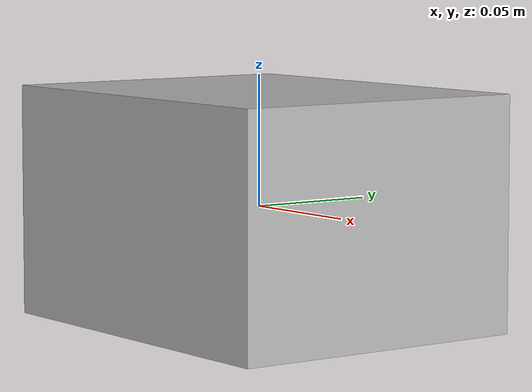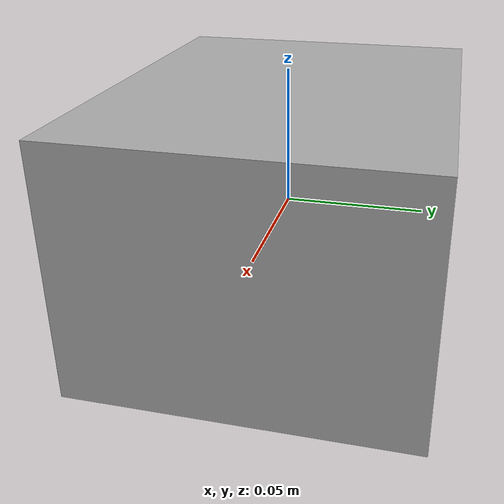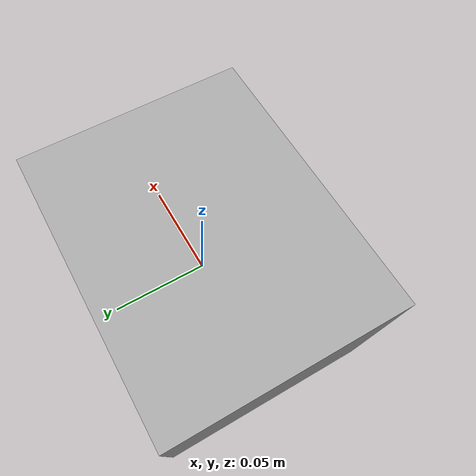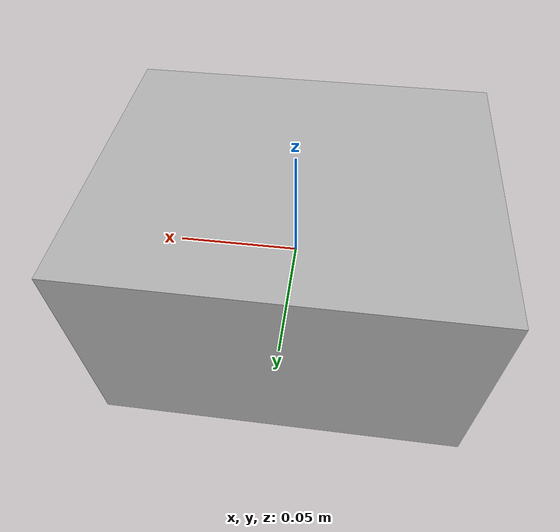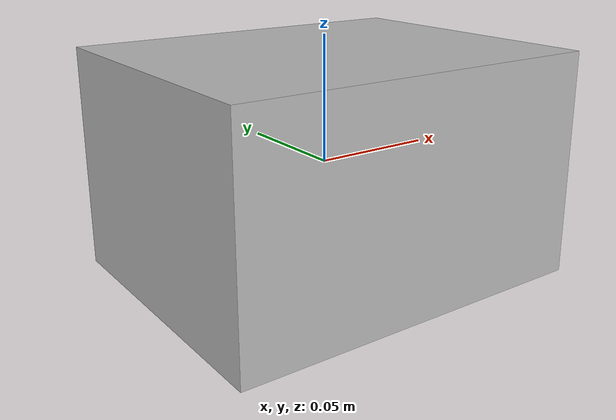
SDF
<?xml version="1.0" ?>
<sdf version="1.6">
    <model name="cardboard_box_green">
        <pose>0 0 0 0 0 0</pose>
        <link name="link">
            <inertial>
                <mass>0.2</mass>
                <inertia>
                    <ixx>0.0002</ixx>
                    <ixy>0</ixy>
                    <ixz>0</ixz>
                    <iyy>0.0003</iyy>
                    <iyz>0</iyz>
                    <izz>0.0004</izz>
                </inertia>
            </inertial>
            <collision name="collision">
                <pose>0 0 0 0 0 0</pose>
                <geometry>
                    <box>
                        <size>0.15 0.12 0.09</size>
                    </box>
                </geometry>
                <surface>
                    <friction>
                        <ode>
                            <mu>1.0</mu>
                            <mu2>1.0</mu2>
                        </ode>
                    </friction>
                    <contact>
                        <ode>
                            <kp>10000000.0</kp>
                            <kd>10000.0</kd>
                            <min_depth>0.001</min_depth>
                            <max_vel>0.1</max_vel>
                        </ode>
                    </contact>
                    <bounce>
                        <restitution_coefficient>0.0</restitution_coefficient>
                        <threshold>1e100</threshold>
                    </bounce>
                </surface>
            </collision>
            <visual name="visual">
                <pose>0 0 -0.045 0 0 0</pose>
                <geometry>
                    <mesh>
                        <uri>meshes/cardboard_box_green.dae</uri>
                        <scale>0.375 0.3 0.225</scale>
                    </mesh>
                </geometry>
            </visual>
        </link>
    </model>
</sdf>
